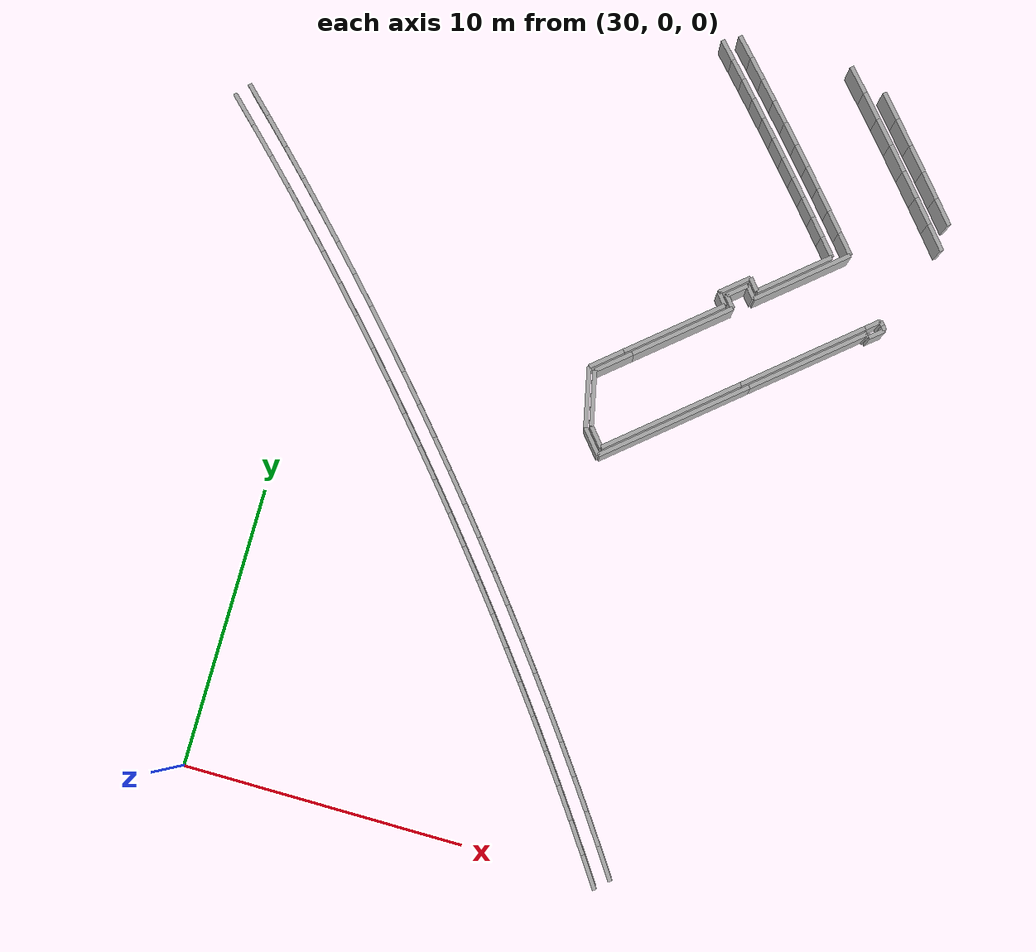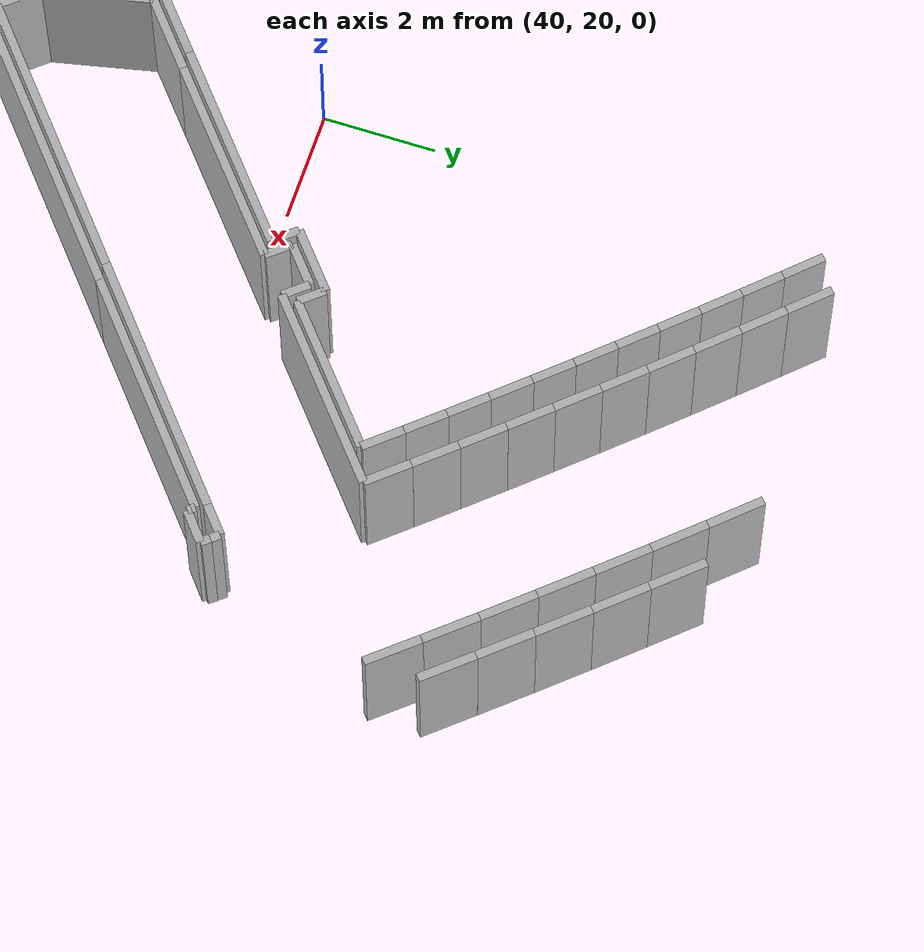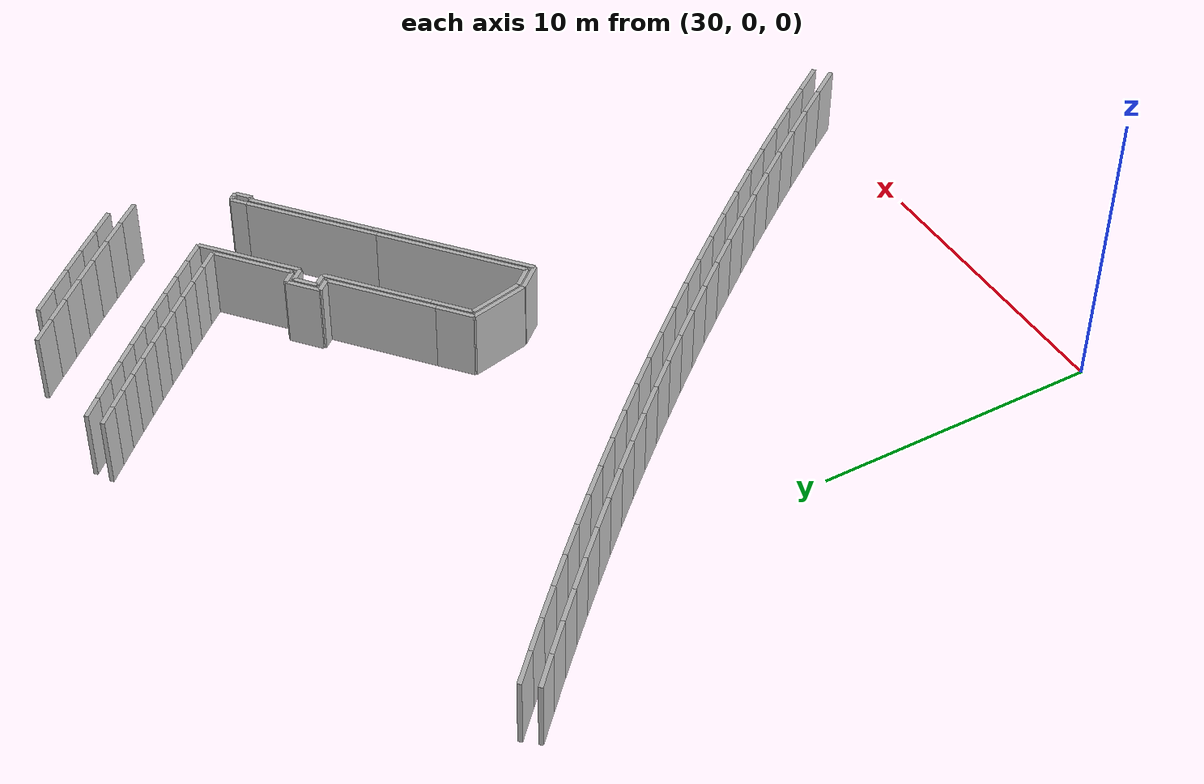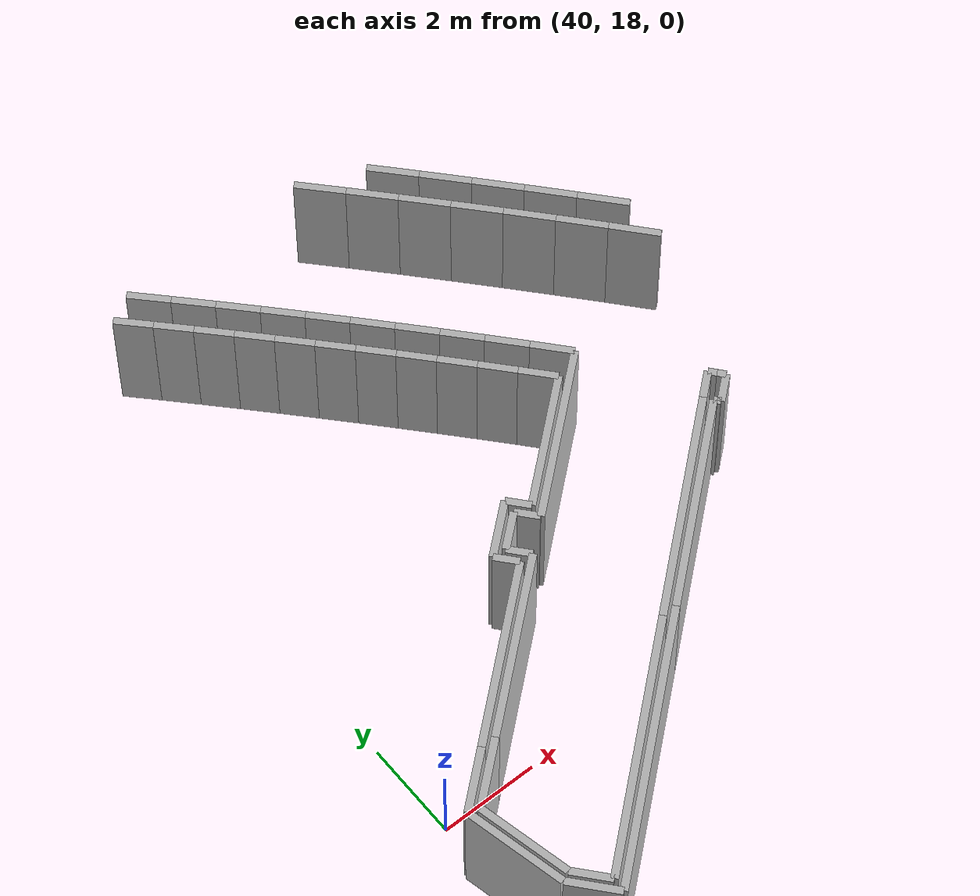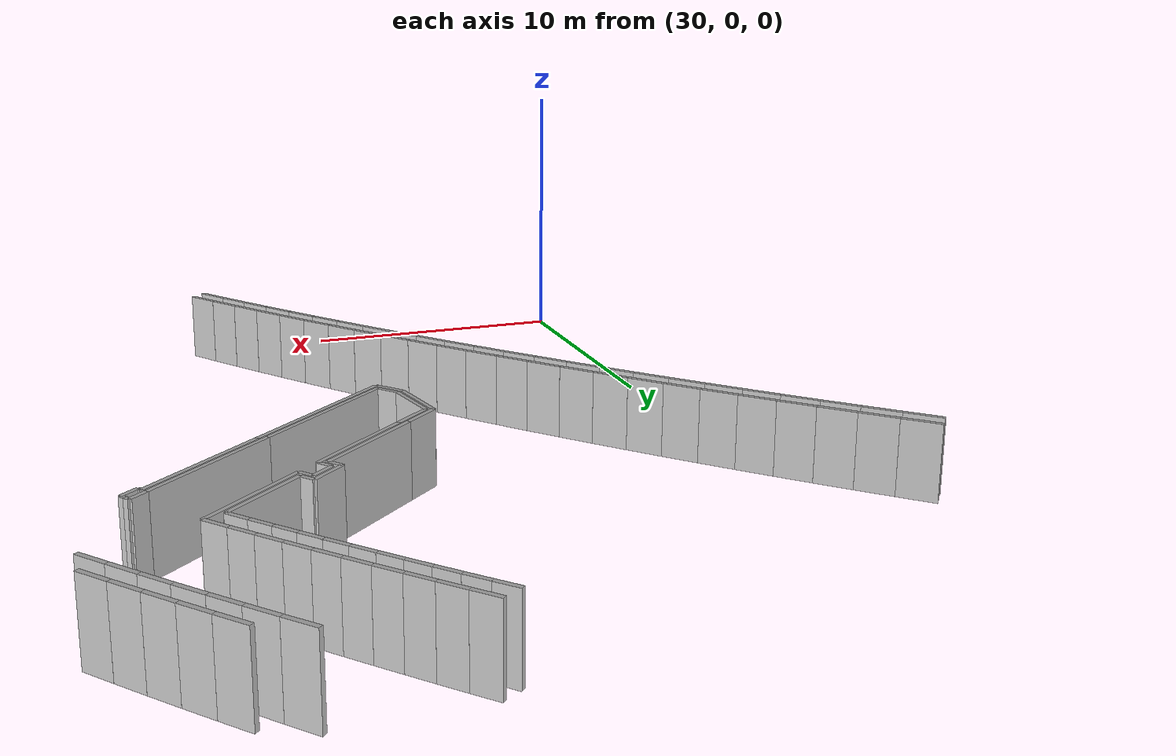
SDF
<sdf version="1.6">
 <model name="sps_0605">
  <static>1</static>
  <allow_auto_disable>0</allow_auto_disable>
  <link name="Wall132">
   <collision name="collision"><geometry><box><size>2.84367 0.15 2.5</size></box></geometry></collision>
   <visual name="visual">
    <geometry><box><size>2.84367 0.15 2.5</size></box></geometry>
    <transparency>0.0</transparency>
   </visual>
   <pose>45.6375 22.0598 1.25 0 -0 0.704005</pose>
  </link>
  <link name="Wall134">
   <collision name="collision"><geometry><box><size>4.44426 0.15 2.5</size></box></geometry></collision>
   <visual name="visual">
    <geometry><box><size>4.44426 0.15 2.5</size></box></geometry>
    <transparency>0.0</transparency>
   </visual>
   <pose>46.9038 19.3309 1.25 0 0 -2.4379</pose>
  </link>
  <link name="Wall135">
   <collision name="collision"><geometry><box><size>5.69951 0.15 2.5</size></box></geometry></collision>
   <visual name="visual">
    <geometry><box><size>5.69951 0.15 2.5</size></box></geometry>
    <transparency>0.0</transparency>
   </visual>
   <pose>43.0367 16.0492 1.25 0 0 -2.4379</pose>
  </link>
  <link name="Wall520">
   <collision name="collision"><geometry><box><size>0.800188 0.15 2.5</size></box></geometry></collision>
   <visual name="visual">
    <geometry><box><size>0.800188 0.15 2.5</size></box></geometry>
    <transparency>0.0</transparency>
   </visual>
   <pose>40.629 14.7919 1.25 0 0 -0.867688</pose>
  </link>
  <link name="Wall849">
   <collision name="collision"><geometry><box><size>1.92368 0.15 2.5</size></box></geometry></collision>
   <visual name="visual">
    <geometry><box><size>1.92368 0.15 2.5</size></box></geometry>
    <transparency>0.0</transparency>
   </visual>
   <pose>40.1633 16.0364 1.25 0 0 -1.35389</pose>
  </link>
  <link name="Wall851">
   <collision name="collision"><geometry><box><size>3.78169 0.15 2.5</size></box></geometry></collision>
   <visual name="visual">
    <geometry><box><size>3.78169 0.15 2.5</size></box></geometry>
    <transparency>0.0</transparency>
   </visual>
   <pose>42.4788 19.1166 1.25 0 0 -2.43786</pose>
  </link>
  <link name="Wall852">
   <collision name="collision"><geometry><box><size>1.41771 0.15 2.5</size></box></geometry></collision>
   <visual name="visual">
    <geometry><box><size>1.41771 0.15 2.5</size></box></geometry>
    <transparency>0.0</transparency>
   </visual>
   <pose>40.4967 17.4344 1.25 0 0 -2.43786</pose>
  </link>
  <link name="Wall854">
   <collision name="collision"><geometry><box><size>4.70152 0.15 2.5</size></box></geometry></collision>
   <visual name="visual">
    <geometry><box><size>4.70152 0.15 2.5</size></box></geometry>
    <transparency>0.0</transparency>
   </visual>
   <pose>46.693 19.4143 1.25 0 0 -2.4378</pose>
  </link>
  <link name="Wall855">
   <collision name="collision"><geometry><box><size>5.26394 0.15 2.5</size></box></geometry></collision>
   <visual name="visual">
    <geometry><box><size>5.26394 0.15 2.5</size></box></geometry>
    <transparency>0.0</transparency>
   </visual>
   <pose>42.8943 16.1899 1.25 0 0 -2.4378</pose>
  </link>
  <link name="Wall1259">
   <collision name="collision"><geometry><box><size>1.30253 0.15 2.5</size></box></geometry></collision>
   <visual name="visual">
    <geometry><box><size>1.30253 0.15 2.5</size></box></geometry>
    <transparency>0.0</transparency>
   </visual>
   <pose>40.2315 17.4717 1.25 0 -0 0.70368</pose>
  </link>
  <link name="Wall1260">
   <collision name="collision"><geometry><box><size>3.81713 0.15 2.5</size></box></geometry></collision>
   <visual name="visual">
    <geometry><box><size>3.81713 0.15 2.5</size></box></geometry>
    <transparency>0.0</transparency>
   </visual>
   <pose>42.1832 19.128 1.25 0 -0 0.70368</pose>
  </link>
  <link name="Wall1261">
   <collision name="collision"><geometry><box><size>0.500356 0.15 2.5</size></box></geometry></collision>
   <visual name="visual">
    <geometry><box><size>0.500356 0.15 2.5</size></box></geometry>
    <transparency>0.0</transparency>
   </visual>
   <pose>44.3689 21.0484 1.25 0 -0 2.27364</pose>
  </link>
  <link name="Wall1549">
   <collision name="collision"><geometry><box><size>0.800142 0.15 2.5</size></box></geometry></collision>
   <visual name="visual">
    <geometry><box><size>0.800142 0.15 2.5</size></box></geometry>
    <transparency>0.0</transparency>
   </visual>
   <pose>43.9021 20.9806 1.25 0 0 -2.43844</pose>
  </link>
  <link name="Wall1550">
   <collision name="collision"><geometry><box><size>0.500335 0.15 2.5</size></box></geometry></collision>
   <visual name="visual">
    <geometry><box><size>0.500335 0.15 2.5</size></box></geometry>
    <transparency>0.0</transparency>
   </visual>
   <pose>44.3919 21.3303 1.25 0 0 -0.867436</pose>
  </link>
  <link name="Wall1864">
   <collision name="collision"><geometry><box><size>0.500521 0.15 2.5</size></box></geometry></collision>
   <visual name="visual">
    <geometry><box><size>0.500521 0.15 2.5</size></box></geometry>
    <transparency>0.0</transparency>
   </visual>
   <pose>43.4766 20.5538 1.25 0 -0 2.27384</pose>
  </link>
  <link name="Wall1865">
   <collision name="collision"><geometry><box><size>0.500435 0.15 2.5</size></box></geometry></collision>
   <visual name="visual">
    <geometry><box><size>0.500435 0.15 2.5</size></box></geometry>
    <transparency>0.0</transparency>
   </visual>
   <pose>43.7587 20.531 1.25 0 0 -0.867766</pose>
  </link>
  <link name="Wall1866">
   <collision name="collision"><geometry><box><size>1.20016 0.15 2.5</size></box></geometry></collision>
   <visual name="visual">
    <geometry><box><size>1.20016 0.15 2.5</size></box></geometry>
    <transparency>0.0</transparency>
   </visual>
   <pose>43.7725 21.1329 1.25 0 -0 0.703496</pose>
  </link>
  <link name="Wall2600">
   <collision name="collision"><geometry><box><size>2.09363 0.15 2.5</size></box></geometry></collision>
   <visual name="visual">
    <geometry><box><size>2.09363 0.15 2.5</size></box></geometry>
    <transparency>0.0</transparency>
   </visual>
   <pose>39.9601 16.028 1.25 0 -0 1.78761</pose>
  </link>
  <link name="Wall2601">
   <collision name="collision"><geometry><box><size>1.04936 0.15 2.5</size></box></geometry></collision>
   <visual name="visual">
    <geometry><box><size>1.04936 0.15 2.5</size></box></geometry>
    <transparency>0.0</transparency>
   </visual>
   <pose>40.5246 14.6055 1.25 0 -0 2.27401</pose>
  </link>
  <link name="Wall2603">
   <collision name="collision"><geometry><box><size>3.64589 0.15 2.5</size></box></geometry></collision>
   <visual name="visual">
    <geometry><box><size>3.64589 0.15 2.5</size></box></geometry>
    <transparency>0.0</transparency>
   </visual>
   <pose>45.9202 22.0374 1.25 0 0 -2.43762</pose>
  </link>
  <link name="Wall2605">
   <collision name="collision"><geometry><box><size>0.580056 0.15 2.5</size></box></geometry></collision>
   <visual name="visual">
    <geometry><box><size>0.580056 0.15 2.5</size></box></geometry>
    <transparency>0.0</transparency>
   </visual>
   <pose>48.7064 21.1231 1.25 0 -0 0.703388</pose>
  </link>
  <link name="Wall2606">
   <collision name="collision"><geometry><box><size>0.60015 0.15 2.5</size></box></geometry></collision>
   <visual name="visual">
    <geometry><box><size>0.60015 0.15 2.5</size></box></geometry>
    <transparency>0.0</transparency>
   </visual>
   <pose>48.9173 20.8531 1.25 0 0 -2.44816</pose>
  </link>
  <link name="Wall7046">
   <collision name="collision"><geometry><box><size>1.25429 0.15 2.5</size></box></geometry></collision>
   <visual name="visual">
    <geometry><box><size>1.25429 0.15 2.5</size></box></geometry>
    <transparency>0.0</transparency>
   </visual>
   <pose>44.9 0.850783 1.25 0 -0 2.17448</pose>
  </link>
  <link name="Wall7047">
   <collision name="collision"><geometry><box><size>1.25422 0.15 2.5</size></box></geometry></collision>
   <visual name="visual">
    <geometry><box><size>1.25422 0.15 2.5</size></box></geometry>
    <transparency>0.0</transparency>
   </visual>
   <pose>44.1836 1.88029 1.25 0 -0 2.183</pose>
  </link>
  <link name="Wall7048">
   <collision name="collision"><geometry><box><size>1.25427 0.15 2.5</size></box></geometry></collision>
   <visual name="visual">
    <geometry><box><size>1.25427 0.15 2.5</size></box></geometry>
    <transparency>0.0</transparency>
   </visual>
   <pose>43.4583 2.90349 1.25 0 -0 2.19198</pose>
  </link>
  <link name="Wall7049">
   <collision name="collision"><geometry><box><size>1.25441 0.15 2.5</size></box></geometry></collision>
   <visual name="visual">
    <geometry><box><size>1.25441 0.15 2.5</size></box></geometry>
    <transparency>0.0</transparency>
   </visual>
   <pose>42.7238 3.92027 1.25 0 -0 2.20078</pose>
  </link>
  <link name="Wall7050">
   <collision name="collision"><geometry><box><size>1.25416 0.15 2.5</size></box></geometry></collision>
   <visual name="visual">
    <geometry><box><size>1.25416 0.15 2.5</size></box></geometry>
    <transparency>0.0</transparency>
   </visual>
   <pose>41.9804 4.9305 1.25 0 -0 2.20963</pose>
  </link>
  <link name="Wall7051">
   <collision name="collision"><geometry><box><size>1.25441 0.15 2.5</size></box></geometry></collision>
   <visual name="visual">
    <geometry><box><size>1.25441 0.15 2.5</size></box></geometry>
    <transparency>0.0</transparency>
   </visual>
   <pose>41.228 5.9341 1.25 0 -0 2.21848</pose>
  </link>
  <link name="Wall7052">
   <collision name="collision"><geometry><box><size>1.25421 0.15 2.5</size></box></geometry></collision>
   <visual name="visual">
    <geometry><box><size>1.25421 0.15 2.5</size></box></geometry>
    <transparency>0.0</transparency>
   </visual>
   <pose>40.4669 6.93108 1.25 0 -0 2.22717</pose>
  </link>
  <link name="Wall7053">
   <collision name="collision"><geometry><box><size>1.25425 0.15 2.5</size></box></geometry></collision>
   <visual name="visual">
    <geometry><box><size>1.25425 0.15 2.5</size></box></geometry>
    <transparency>0.0</transparency>
   </visual>
   <pose>39.6972 7.92128 1.25 0 -0 2.23602</pose>
  </link>
  <link name="Wall7054">
   <collision name="collision"><geometry><box><size>1.25427 0.15 2.5</size></box></geometry></collision>
   <visual name="visual">
    <geometry><box><size>1.25427 0.15 2.5</size></box></geometry>
    <transparency>0.0</transparency>
   </visual>
   <pose>38.9187 8.90468 1.25 0 -0 2.24482</pose>
  </link>
  <link name="Wall7055">
   <collision name="collision"><geometry><box><size>1.25422 0.15 2.5</size></box></geometry></collision>
   <visual name="visual">
    <geometry><box><size>1.25422 0.15 2.5</size></box></geometry>
    <transparency>0.0</transparency>
   </visual>
   <pose>38.1316 9.88118 1.25 0 -0 2.25361</pose>
  </link>
  <link name="Wall7056">
   <collision name="collision"><geometry><box><size>1.25425 0.15 2.5</size></box></geometry></collision>
   <visual name="visual">
    <geometry><box><size>1.25425 0.15 2.5</size></box></geometry>
    <transparency>0.0</transparency>
   </visual>
   <pose>37.3359 10.8507 1.25 0 -0 2.26246</pose>
  </link>
  <link name="Wall7057">
   <collision name="collision"><geometry><box><size>1.25412 0.15 2.5</size></box></geometry></collision>
   <visual name="visual">
    <geometry><box><size>1.25412 0.15 2.5</size></box></geometry>
    <transparency>0.0</transparency>
   </visual>
   <pose>36.5317 11.8131 1.25 0 -0 2.2713</pose>
  </link>
  <link name="Wall7058">
   <collision name="collision"><geometry><box><size>1.25424 0.15 2.5</size></box></geometry></collision>
   <visual name="visual">
    <geometry><box><size>1.25424 0.15 2.5</size></box></geometry>
    <transparency>0.0</transparency>
   </visual>
   <pose>35.719 12.7684 1.25 0 -0 2.28004</pose>
  </link>
  <link name="Wall7059">
   <collision name="collision"><geometry><box><size>1.25443 0.15 2.5</size></box></geometry></collision>
   <visual name="visual">
    <geometry><box><size>1.25443 0.15 2.5</size></box></geometry>
    <transparency>0.0</transparency>
   </visual>
   <pose>34.8979 13.7166 1.25 0 -0 2.28892</pose>
  </link>
  <link name="Wall7060">
   <collision name="collision"><geometry><box><size>1.25413 0.15 2.5</size></box></geometry></collision>
   <visual name="visual">
    <geometry><box><size>1.25413 0.15 2.5</size></box></geometry>
    <transparency>0.0</transparency>
   </visual>
   <pose>34.0686 14.6575 1.25 0 -0 2.29762</pose>
  </link>
  <link name="Wall7061">
   <collision name="collision"><geometry><box><size>1.25426 0.15 2.5</size></box></geometry></collision>
   <visual name="visual">
    <geometry><box><size>1.25426 0.15 2.5</size></box></geometry>
    <transparency>0.0</transparency>
   </visual>
   <pose>33.231 15.591 1.25 0 -0 2.30656</pose>
  </link>
  <link name="Wall7062">
   <collision name="collision"><geometry><box><size>1.25445 0.15 2.5</size></box></geometry></collision>
   <visual name="visual">
    <geometry><box><size>1.25445 0.15 2.5</size></box></geometry>
    <transparency>0.0</transparency>
   </visual>
   <pose>32.3851 16.5172 1.25 0 -0 2.31531</pose>
  </link>
  <link name="Wall7063">
   <collision name="collision"><geometry><box><size>1.25423 0.15 2.5</size></box></geometry></collision>
   <visual name="visual">
    <geometry><box><size>1.25423 0.15 2.5</size></box></geometry>
    <transparency>0.0</transparency>
   </visual>
   <pose>31.5312 17.436 1.25 0 -0 2.32391</pose>
  </link>
  <link name="Wall7064">
   <collision name="collision"><geometry><box><size>1.25417 0.15 2.5</size></box></geometry></collision>
   <visual name="visual">
    <geometry><box><size>1.25417 0.15 2.5</size></box></geometry>
    <transparency>0.0</transparency>
   </visual>
   <pose>30.6692 18.3471 1.25 0 -0 2.333</pose>
  </link>
  <link name="Wall7065">
   <collision name="collision"><geometry><box><size>1.2544 0.15 2.5</size></box></geometry></collision>
   <visual name="visual">
    <geometry><box><size>1.2544 0.15 2.5</size></box></geometry>
    <transparency>0.0</transparency>
   </visual>
   <pose>29.7992 19.2506 1.25 0 -0 2.34161</pose>
  </link>
  <link name="Wall7066">
   <collision name="collision"><geometry><box><size>1.25416 0.15 2.5</size></box></geometry></collision>
   <visual name="visual">
    <geometry><box><size>1.25416 0.15 2.5</size></box></geometry>
    <transparency>0.0</transparency>
   </visual>
   <pose>28.9213 20.1464 1.25 0 -0 2.35059</pose>
  </link>
  <link name="Wall7067">
   <collision name="collision"><geometry><box><size>1.25427 0.15 2.5</size></box></geometry></collision>
   <visual name="visual">
    <geometry><box><size>1.25427 0.15 2.5</size></box></geometry>
    <transparency>0.0</transparency>
   </visual>
   <pose>28.0356 21.0344 1.25 0 -0 2.35922</pose>
  </link>
  <link name="Wall7068">
   <collision name="collision"><geometry><box><size>1.25419 0.15 2.5</size></box></geometry></collision>
   <visual name="visual">
    <geometry><box><size>1.25419 0.15 2.5</size></box></geometry>
    <transparency>0.0</transparency>
   </visual>
   <pose>27.1421 21.9146 1.25 0 -0 2.36817</pose>
  </link>
  <link name="Wall7069">
   <collision name="collision"><geometry><box><size>1.25428 0.15 2.5</size></box></geometry></collision>
   <visual name="visual">
    <geometry><box><size>1.25428 0.15 2.5</size></box></geometry>
    <transparency>0.0</transparency>
   </visual>
   <pose>26.2408 22.7868 1.25 0 -0 2.37705</pose>
  </link>
  <link name="Wall7089">
   <collision name="collision"><geometry><box><size>1.02001 0.15 2.5</size></box></geometry></collision>
   <visual name="visual">
    <geometry><box><size>1.02001 0.15 2.5</size></box></geometry>
    <transparency>0.0</transparency>
   </visual>
   <pose>49.9609 25.5329 1.25 0 -0 2.28251</pose>
  </link>
  <link name="Wall7090">
   <collision name="collision"><geometry><box><size>1.02011 0.15 2.5</size></box></geometry></collision>
   <visual name="visual">
    <geometry><box><size>1.02011 0.15 2.5</size></box></geometry>
    <transparency>0.0</transparency>
   </visual>
   <pose>49.2922 26.3032 1.25 0 -0 2.28892</pose>
  </link>
  <link name="Wall7091">
   <collision name="collision"><geometry><box><size>1.01996 0.15 2.5</size></box></geometry></collision>
   <visual name="visual">
    <geometry><box><size>1.01996 0.15 2.5</size></box></geometry>
    <transparency>0.0</transparency>
   </visual>
   <pose>48.6186 27.0692 1.25 0 -0 2.29527</pose>
  </link>
  <link name="Wall7092">
   <collision name="collision"><geometry><box><size>1.0202 0.15 2.5</size></box></geometry></collision>
   <visual name="visual">
    <geometry><box><size>1.0202 0.15 2.5</size></box></geometry>
    <transparency>0.0</transparency>
   </visual>
   <pose>47.9403 27.831 1.25 0 -0 2.30138</pose>
  </link>
  <link name="Wall7093">
   <collision name="collision"><geometry><box><size>1.01998 0.15 2.5</size></box></geometry></collision>
   <visual name="visual">
    <geometry><box><size>1.01998 0.15 2.5</size></box></geometry>
    <transparency>0.0</transparency>
   </visual>
   <pose>47.2571 28.5885 1.25 0 -0 2.30794</pose>
  </link>
  <link name="Wall13026">
   <collision name="collision"><geometry><box><size>0.0695998 0.15 2.5</size></box></geometry></collision>
   <visual name="visual">
    <geometry><box><size>0.0695998 0.15 2.5</size></box></geometry>
    <transparency>0.0</transparency>
   </visual>
   <pose>48.6201 20.7418 1.25 0 0 -0.882907</pose>
  </link>
  <link name="Wall13027">
   <collision name="collision"><geometry><box><size>0.0695444 0.15 2.5</size></box></geometry></collision>
   <visual name="visual">
    <geometry><box><size>0.0695444 0.15 2.5</size></box></geometry>
    <transparency>0.0</transparency>
   </visual>
   <pose>48.6644 20.6881 1.25 0 0 -0.881115</pose>
  </link>
  <link name="Wall13036">
   <collision name="collision"><geometry><box><size>1.01267 0.15 2.5</size></box></geometry></collision>
   <visual name="visual">
    <geometry><box><size>1.01267 0.15 2.5</size></box></geometry>
    <transparency>0.0</transparency>
   </visual>
   <pose>49.963 24.6123 1.25 0 -0 2.27834</pose>
  </link>
  <link name="Wall13037">
   <collision name="collision"><geometry><box><size>1.01281 0.15 2.5</size></box></geometry></collision>
   <visual name="visual">
    <geometry><box><size>1.01281 0.15 2.5</size></box></geometry>
    <transparency>0.0</transparency>
   </visual>
   <pose>49.3024 25.3799 1.25 0 -0 2.2845</pose>
  </link>
  <link name="Wall13038">
   <collision name="collision"><geometry><box><size>1.01276 0.15 2.5</size></box></geometry></collision>
   <visual name="visual">
    <geometry><box><size>1.01276 0.15 2.5</size></box></geometry>
    <transparency>0.0</transparency>
   </visual>
   <pose>48.637 26.1434 1.25 0 -0 2.29078</pose>
  </link>
  <link name="Wall13039">
   <collision name="collision"><geometry><box><size>1.01275 0.15 2.5</size></box></geometry></collision>
   <visual name="visual">
    <geometry><box><size>1.01275 0.15 2.5</size></box></geometry>
    <transparency>0.0</transparency>
   </visual>
   <pose>47.9668 26.9027 1.25 0 -0 2.29714</pose>
  </link>
  <link name="Wall13040">
   <collision name="collision"><geometry><box><size>1.01269 0.15 2.5</size></box></geometry></collision>
   <visual name="visual">
    <geometry><box><size>1.01269 0.15 2.5</size></box></geometry>
    <transparency>0.0</transparency>
   </visual>
   <pose>47.2918 27.6577 1.25 0 -0 2.30349</pose>
  </link>
  <link name="Wall13041">
   <collision name="collision"><geometry><box><size>1.01268 0.15 2.5</size></box></geometry></collision>
   <visual name="visual">
    <geometry><box><size>1.01268 0.15 2.5</size></box></geometry>
    <transparency>0.0</transparency>
   </visual>
   <pose>46.6121 28.4084 1.25 0 -0 2.30968</pose>
  </link>
  <link name="Wall13042">
   <collision name="collision"><geometry><box><size>1.0127 0.15 2.5</size></box></geometry></collision>
   <visual name="visual">
    <geometry><box><size>1.0127 0.15 2.5</size></box></geometry>
    <transparency>0.0</transparency>
   </visual>
   <pose>45.9277 29.1548 1.25 0 -0 2.31612</pose>
  </link>
  <link name="Wall16791">
   <collision name="collision"><geometry><box><size>0.172597 0.15 2.5</size></box></geometry></collision>
   <visual name="visual">
    <geometry><box><size>0.172597 0.15 2.5</size></box></geometry>
    <transparency>0.0</transparency>
   </visual>
   <pose>48.9827 21.2443 1.25 0 0 -0.87805</pose>
  </link>
  <link name="Wall16792">
   <collision name="collision"><geometry><box><size>0.172699 0.15 2.5</size></box></geometry></collision>
   <visual name="visual">
    <geometry><box><size>0.172699 0.15 2.5</size></box></geometry>
    <transparency>0.0</transparency>
   </visual>
   <pose>49.0929 21.1114 1.25 0 0 -0.878999</pose>
  </link>
  <link name="Wall19356">
   <collision name="collision"><geometry><box><size>1.25231 0.15 2.5</size></box></geometry></collision>
   <visual name="visual">
    <geometry><box><size>1.25231 0.15 2.5</size></box></geometry>
    <transparency>0.0</transparency>
   </visual>
   <pose>44.4657 0.424514 1.25 0 -0 2.17356</pose>
  </link>
  <link name="Wall19357">
   <collision name="collision"><geometry><box><size>1.252 0.15 2.5</size></box></geometry></collision>
   <visual name="visual">
    <geometry><box><size>1.252 0.15 2.5</size></box></geometry>
    <transparency>0.0</transparency>
   </visual>
   <pose>43.7512 1.4528 1.25 0 -0 2.18252</pose>
  </link>
  <link name="Wall19358">
   <collision name="collision"><geometry><box><size>1.25229 0.15 2.5</size></box></geometry></collision>
   <visual name="visual">
    <geometry><box><size>1.25229 0.15 2.5</size></box></geometry>
    <transparency>0.0</transparency>
   </visual>
   <pose>43.0276 2.47468 1.25 0 -0 2.19137</pose>
  </link>
  <link name="Wall19359">
   <collision name="collision"><geometry><box><size>1.25209 0.15 2.5</size></box></geometry></collision>
   <visual name="visual">
    <geometry><box><size>1.25209 0.15 2.5</size></box></geometry>
    <transparency>0.0</transparency>
   </visual>
   <pose>42.295 3.49019 1.25 0 -0 2.20014</pose>
  </link>
  <link name="Wall19360">
   <collision name="collision"><geometry><box><size>1.25228 0.15 2.5</size></box></geometry></collision>
   <visual name="visual">
    <geometry><box><size>1.25228 0.15 2.5</size></box></geometry>
    <transparency>0.0</transparency>
   </visual>
   <pose>41.5535 4.49919 1.25 0 -0 2.20898</pose>
  </link>
  <link name="Wall19361">
   <collision name="collision"><geometry><box><size>1.25223 0.15 2.5</size></box></geometry></collision>
   <visual name="visual">
    <geometry><box><size>1.25223 0.15 2.5</size></box></geometry>
    <transparency>0.0</transparency>
   </visual>
   <pose>40.8031 5.50169 1.25 0 -0 2.21772</pose>
  </link>
  <link name="Wall19362">
   <collision name="collision"><geometry><box><size>1.25216 0.15 2.5</size></box></geometry></collision>
   <visual name="visual">
    <geometry><box><size>1.25216 0.15 2.5</size></box></geometry>
    <transparency>0.0</transparency>
   </visual>
   <pose>40.0439 6.49748 1.25 0 -0 2.22665</pose>
  </link>
  <link name="Wall19363">
   <collision name="collision"><geometry><box><size>1.25225 0.15 2.5</size></box></geometry></collision>
   <visual name="visual">
    <geometry><box><size>1.25225 0.15 2.5</size></box></geometry>
    <transparency>0.0</transparency>
   </visual>
   <pose>39.2759 7.48649 1.25 0 -0 2.23548</pose>
  </link>
  <link name="Wall19364">
   <collision name="collision"><geometry><box><size>1.25232 0.15 2.5</size></box></geometry></collision>
   <visual name="visual">
    <geometry><box><size>1.25232 0.15 2.5</size></box></geometry>
    <transparency>0.0</transparency>
   </visual>
   <pose>38.4992 8.46879 1.25 0 -0 2.2442</pose>
  </link>
  <link name="Wall19365">
   <collision name="collision"><geometry><box><size>1.25215 0.15 2.5</size></box></geometry></collision>
   <visual name="visual">
    <geometry><box><size>1.25215 0.15 2.5</size></box></geometry>
    <transparency>0.0</transparency>
   </visual>
   <pose>37.7139 9.44417 1.25 0 -0 2.25313</pose>
  </link>
  <link name="Wall19366">
   <collision name="collision"><geometry><box><size>1.25223 0.15 2.5</size></box></geometry></collision>
   <visual name="visual">
    <geometry><box><size>1.25223 0.15 2.5</size></box></geometry>
    <transparency>0.0</transparency>
   </visual>
   <pose>36.9199 10.4125 1.25 0 -0 2.26196</pose>
  </link>
  <link name="Wall19367">
   <collision name="collision"><geometry><box><size>1.25215 0.15 2.5</size></box></geometry></collision>
   <visual name="visual">
    <geometry><box><size>1.25215 0.15 2.5</size></box></geometry>
    <transparency>0.0</transparency>
   </visual>
   <pose>36.1175 11.3738 1.25 0 -0 2.27071</pose>
  </link>
  <link name="Wall19368">
   <collision name="collision"><geometry><box><size>1.25216 0.15 2.5</size></box></geometry></collision>
   <visual name="visual">
    <geometry><box><size>1.25216 0.15 2.5</size></box></geometry>
    <transparency>0.0</transparency>
   </visual>
   <pose>35.3068 12.328 1.25 0 -0 2.27953</pose>
  </link>
  <link name="Wall19369">
   <collision name="collision"><geometry><box><size>1.25216 0.15 2.5</size></box></geometry></collision>
   <visual name="visual">
    <geometry><box><size>1.25216 0.15 2.5</size></box></geometry>
    <transparency>0.0</transparency>
   </visual>
   <pose>34.4874 13.2749 1.25 0 -0 2.28862</pose>
  </link>
  <link name="Wall19370">
   <collision name="collision"><geometry><box><size>1.25223 0.15 2.5</size></box></geometry></collision>
   <visual name="visual">
    <geometry><box><size>1.25223 0.15 2.5</size></box></geometry>
    <transparency>0.0</transparency>
   </visual>
   <pose>33.6598 14.2146 1.25 0 -0 2.29709</pose>
  </link>
  <link name="Wall19371">
   <collision name="collision"><geometry><box><size>1.25213 0.15 2.5</size></box></geometry></collision>
   <visual name="visual">
    <geometry><box><size>1.25213 0.15 2.5</size></box></geometry>
    <transparency>0.0</transparency>
   </visual>
   <pose>32.8241 15.147 1.25 0 -0 2.30613</pose>
  </link>
  <link name="Wall19372">
   <collision name="collision"><geometry><box><size>1.25223 0.15 2.5</size></box></geometry></collision>
   <visual name="visual">
    <geometry><box><size>1.25223 0.15 2.5</size></box></geometry>
    <transparency>0.0</transparency>
   </visual>
   <pose>31.98 16.0719 1.25 0 -0 2.31496</pose>
  </link>
  <link name="Wall19373">
   <collision name="collision"><geometry><box><size>1.25212 0.15 2.5</size></box></geometry></collision>
   <visual name="visual">
    <geometry><box><size>1.25212 0.15 2.5</size></box></geometry>
    <transparency>0.0</transparency>
   </visual>
   <pose>31.1278 16.9893 1.25 0 -0 2.32375</pose>
  </link>
  <link name="Wall19374">
   <collision name="collision"><geometry><box><size>1.2522 0.15 2.5</size></box></geometry></collision>
   <visual name="visual">
    <geometry><box><size>1.2522 0.15 2.5</size></box></geometry>
    <transparency>0.0</transparency>
   </visual>
   <pose>30.2674 17.8991 1.25 0 -0 2.33276</pose>
  </link>
  <link name="Wall19375">
   <collision name="collision"><geometry><box><size>1.25229 0.15 2.5</size></box></geometry></collision>
   <visual name="visual">
    <geometry><box><size>1.25229 0.15 2.5</size></box></geometry>
    <transparency>0.0</transparency>
   </visual>
   <pose>29.3991 18.8014 1.25 0 -0 2.34127</pose>
  </link>
  <link name="Wall19376">
   <collision name="collision"><geometry><box><size>1.25231 0.15 2.5</size></box></geometry></collision>
   <visual name="visual">
    <geometry><box><size>1.25231 0.15 2.5</size></box></geometry>
    <transparency>0.0</transparency>
   </visual>
   <pose>28.5229 19.6961 1.25 0 -0 2.3502</pose>
  </link>
  <link name="Wall19377">
   <collision name="collision"><geometry><box><size>1.25216 0.15 2.5</size></box></geometry></collision>
   <visual name="visual">
    <geometry><box><size>1.25216 0.15 2.5</size></box></geometry>
    <transparency>0.0</transparency>
   </visual>
   <pose>27.6388 20.5829 1.25 0 -0 2.35912</pose>
  </link>
  <link name="Wall19378">
   <collision name="collision"><geometry><box><size>1.25207 0.15 2.5</size></box></geometry></collision>
   <visual name="visual">
    <geometry><box><size>1.25207 0.15 2.5</size></box></geometry>
    <transparency>0.0</transparency>
   </visual>
   <pose>26.7471 21.4618 1.25 0 -0 2.36781</pose>
  </link>
  <link name="Wall19379">
   <collision name="collision"><geometry><box><size>1.25229 0.15 2.5</size></box></geometry></collision>
   <visual name="visual">
    <geometry><box><size>1.25229 0.15 2.5</size></box></geometry>
    <transparency>0.0</transparency>
   </visual>
   <pose>25.8476 22.3329 1.25 0 -0 2.37667</pose>
  </link>
  <link name="Wall25198">
   <collision name="collision"><geometry><box><size>0.849231 0.15 2.5</size></box></geometry></collision>
   <visual name="visual">
    <geometry><box><size>0.849231 0.15 2.5</size></box></geometry>
    <transparency>0.0</transparency>
   </visual>
   <pose>47.0318 23.5382 1.25 0 -0 2.28483</pose>
  </link>
  <link name="Wall25199">
   <collision name="collision"><geometry><box><size>0.849382 0.15 2.5</size></box></geometry></collision>
   <visual name="visual">
    <geometry><box><size>0.849382 0.15 2.5</size></box></geometry>
    <transparency>0.0</transparency>
   </visual>
   <pose>46.4738 24.1785 1.25 0 -0 2.2904</pose>
  </link>
  <link name="Wall25200">
   <collision name="collision"><geometry><box><size>0.849236 0.15 2.5</size></box></geometry></collision>
   <visual name="visual">
    <geometry><box><size>0.849236 0.15 2.5</size></box></geometry>
    <transparency>0.0</transparency>
   </visual>
   <pose>45.9124 24.8158 1.25 0 -0 2.29553</pose>
  </link>
  <link name="Wall25201">
   <collision name="collision"><geometry><box><size>0.849423 0.15 2.5</size></box></geometry></collision>
   <visual name="visual">
    <geometry><box><size>0.849423 0.15 2.5</size></box></geometry>
    <transparency>0.0</transparency>
   </visual>
   <pose>45.3475 25.45 1.25 0 -0 2.30139</pose>
  </link>
  <link name="Wall25202">
   <collision name="collision"><geometry><box><size>0.84928 0.15 2.5</size></box></geometry></collision>
   <visual name="visual">
    <geometry><box><size>0.84928 0.15 2.5</size></box></geometry>
    <transparency>0.0</transparency>
   </visual>
   <pose>44.779 26.0811 1.25 0 -0 2.30658</pose>
  </link>
  <link name="Wall25203">
   <collision name="collision"><geometry><box><size>0.849493 0.15 2.5</size></box></geometry></collision>
   <visual name="visual">
    <geometry><box><size>0.849493 0.15 2.5</size></box></geometry>
    <transparency>0.0</transparency>
   </visual>
   <pose>44.2072 26.7092 1.25 0 -0 2.31208</pose>
  </link>
  <link name="Wall25204">
   <collision name="collision"><geometry><box><size>0.849307 0.15 2.5</size></box></geometry></collision>
   <visual name="visual">
    <geometry><box><size>0.849307 0.15 2.5</size></box></geometry>
    <transparency>0.0</transparency>
   </visual>
   <pose>43.632 27.3342 1.25 0 -0 2.31736</pose>
  </link>
  <link name="Wall25205">
   <collision name="collision"><geometry><box><size>0.849445 0.15 2.5</size></box></geometry></collision>
   <visual name="visual">
    <geometry><box><size>0.849445 0.15 2.5</size></box></geometry>
    <transparency>0.0</transparency>
   </visual>
   <pose>43.0536 27.9561 1.25 0 -0 2.32271</pose>
  </link>
  <link name="Wall25206">
   <collision name="collision"><geometry><box><size>0.84943 0.15 2.5</size></box></geometry></collision>
   <visual name="visual">
    <geometry><box><size>0.84943 0.15 2.5</size></box></geometry>
    <transparency>0.0</transparency>
   </visual>
   <pose>42.4716 28.5749 1.25 0 -0 2.32825</pose>
  </link>
  <link name="Wall25207">
   <collision name="collision"><geometry><box><size>0.849316 0.15 2.5</size></box></geometry></collision>
   <visual name="visual">
    <geometry><box><size>0.849316 0.15 2.5</size></box></geometry>
    <transparency>0.0</transparency>
   </visual>
   <pose>41.8864 29.1905 1.25 0 -0 2.33353</pose>
  </link>
  <link name="Wall27800">
   <collision name="collision"><geometry><box><size>0.764272 0.15 2.5</size></box></geometry></collision>
   <visual name="visual">
    <geometry><box><size>0.764272 0.15 2.5</size></box></geometry>
    <transparency>0.0</transparency>
   </visual>
   <pose>46.4707 23.2686 1.25 0 -0 2.28606</pose>
  </link>
  <link name="Wall27801">
   <collision name="collision"><geometry><box><size>0.764325 0.15 2.5</size></box></geometry></collision>
   <visual name="visual">
    <geometry><box><size>0.764325 0.15 2.5</size></box></geometry>
    <transparency>0.0</transparency>
   </visual>
   <pose>45.968 23.8444 1.25 0 -0 2.29087</pose>
  </link>
  <link name="Wall27802">
   <collision name="collision"><geometry><box><size>0.764097 0.15 2.5</size></box></geometry></collision>
   <visual name="visual">
    <geometry><box><size>0.764097 0.15 2.5</size></box></geometry>
    <transparency>0.0</transparency>
   </visual>
   <pose>45.4627 24.4177 1.25 0 -0 2.29561</pose>
  </link>
  <link name="Wall27803">
   <collision name="collision"><geometry><box><size>0.764384 0.15 2.5</size></box></geometry></collision>
   <visual name="visual">
    <geometry><box><size>0.764384 0.15 2.5</size></box></geometry>
    <transparency>0.0</transparency>
   </visual>
   <pose>44.9546 24.9885 1.25 0 -0 2.30083</pose>
  </link>
  <link name="Wall27804">
   <collision name="collision"><geometry><box><size>0.764368 0.15 2.5</size></box></geometry></collision>
   <visual name="visual">
    <geometry><box><size>0.764368 0.15 2.5</size></box></geometry>
    <transparency>0.0</transparency>
   </visual>
   <pose>44.4435 25.5569 1.25 0 -0 2.30547</pose>
  </link>
  <link name="Wall27805">
   <collision name="collision"><geometry><box><size>0.764223 0.15 2.5</size></box></geometry></collision>
   <visual name="visual">
    <geometry><box><size>0.764223 0.15 2.5</size></box></geometry>
    <transparency>0.0</transparency>
   </visual>
   <pose>43.9297 26.1227 1.25 0 -0 2.3106</pose>
  </link>
  <link name="Wall27806">
   <collision name="collision"><geometry><box><size>0.764152 0.15 2.5</size></box></geometry></collision>
   <visual name="visual">
    <geometry><box><size>0.764152 0.15 2.5</size></box></geometry>
    <transparency>0.0</transparency>
   </visual>
   <pose>43.4132 26.6859 1.25 0 -0 2.31535</pose>
  </link>
  <link name="Wall27807">
   <collision name="collision"><geometry><box><size>0.764358 0.15 2.5</size></box></geometry></collision>
   <visual name="visual">
    <geometry><box><size>0.764358 0.15 2.5</size></box></geometry>
    <transparency>0.0</transparency>
   </visual>
   <pose>42.8939 27.2467 1.25 0 -0 2.32011</pose>
  </link>
  <link name="Wall27808">
   <collision name="collision"><geometry><box><size>0.764316 0.15 2.5</size></box></geometry></collision>
   <visual name="visual">
    <geometry><box><size>0.764316 0.15 2.5</size></box></geometry>
    <transparency>0.0</transparency>
   </visual>
   <pose>42.3719 27.805 1.25 0 -0 2.32508</pose>
  </link>
  <link name="Wall27809">
   <collision name="collision"><geometry><box><size>0.76421 0.15 2.5</size></box></geometry></collision>
   <visual name="visual">
    <geometry><box><size>0.76421 0.15 2.5</size></box></geometry>
    <transparency>0.0</transparency>
   </visual>
   <pose>41.8473 28.3607 1.25 0 -0 2.32993</pose>
  </link>
  <link name="Wall27810">
   <collision name="collision"><geometry><box><size>0.764256 0.15 2.5</size></box></geometry></collision>
   <visual name="visual">
    <geometry><box><size>0.764256 0.15 2.5</size></box></geometry>
    <transparency>0.0</transparency>
   </visual>
   <pose>41.32 28.9139 1.25 0 -0 2.33451</pose>
  </link>
 </model>
</sdf>
